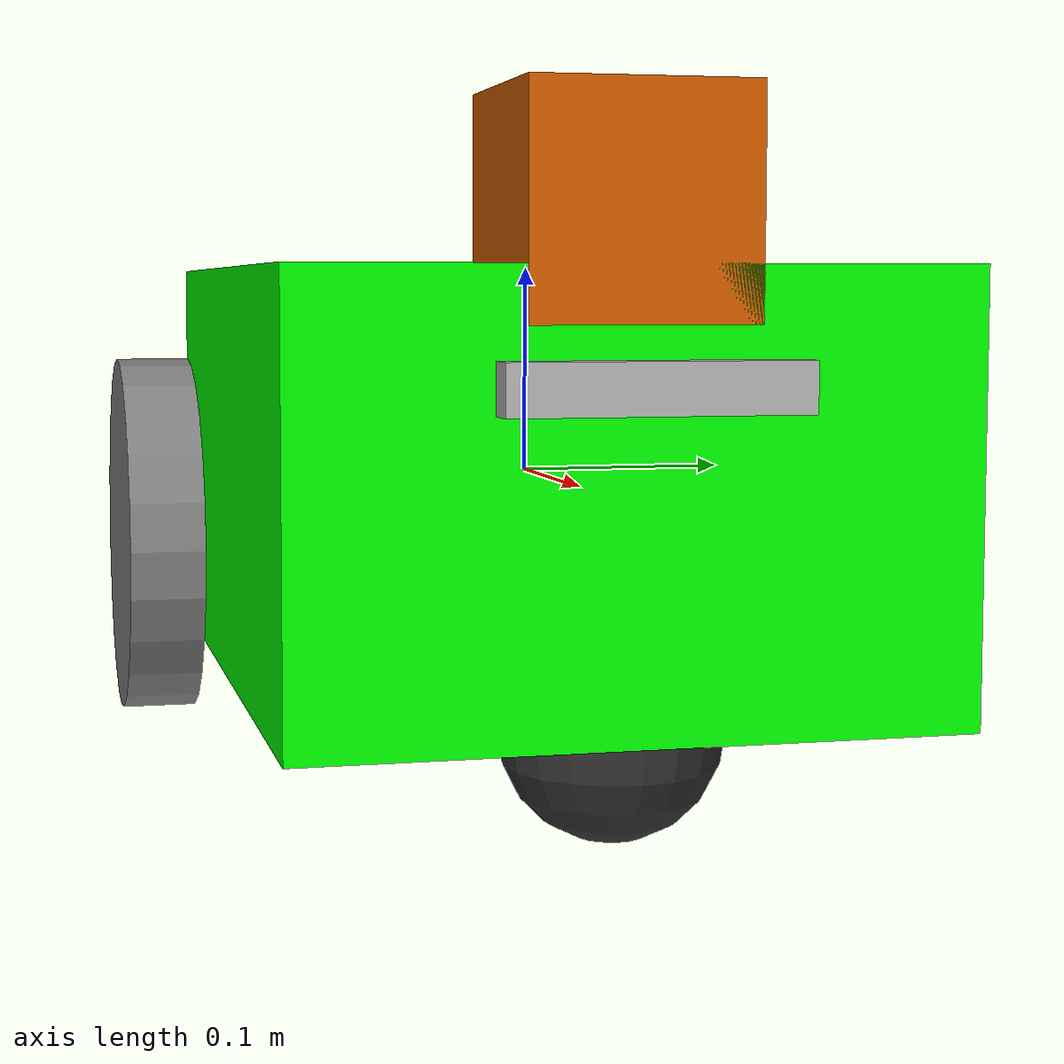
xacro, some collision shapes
<?xml version="1.0"?>
<robot name="robot_loc_nav" xmlns:xacro="http://ros.org/wiki/xacro">
    <!-- Constants for the robot-->
    <xacro:property name="width" value="0.4"/>
    <xacro:property name="depth" value="0.3"/>
    <xacro:property name="height" value="0.2"/>
    <xacro:property name="radius" value="0.1"/>
    <xacro:property name="length" value="0.04"/>
    <xacro:property name="radius2" value="0.05"/>
    <xacro:property name="mass" value="1"/>
    <xacro:property name="rotation" value="3.14"/>

    <!-- Import colors for Robot-->
    <xacro:include filename="$(find robot_loc_nav)/urdf/materials.xacro"/>

    <!--Import Gazebo plugins. Colors and Differetnial Drive-->
    <xacro:include filename="$(find robot_loc_nav)/urdf/my_robot.gazebo"/>

    <!-- Import Gazebo plugin for LASER-->
    <xacro:include filename="$(find robot_loc_nav)/urdf/laser.gazebo"/>

    <!-- Import Gazebo plugin for IMU-->
    <xacro:include filename="$(find robot_loc_nav)/urdf/imu.gazebo"/>

    <!-- Import Gazebo plugins for depth camera-->

    <!-- Default inertia for boxes-->
    <xacro:macro name="default_inertia_boxes" params="mass width depth height">
        <inertial>
            <origin xyz="0 0 ${height/2}" rpy="0 0 0"/>
            <mass value="${mass}"/>
            <inertia ixx="${(mass/12)*(height*height+depth*depth)}" ixy="0" ixz="0"
                     iyy="${(mass/12)*(width*width+depth*depth)}" iyz="0"
                     izz="${(mass/12)*(height*height+width*width)}"/>
            </inertial>
    </xacro:macro>

    <!-- Default inertia for cylinders-->
    <xacro:macro name="default_inertia_cylinder" params="mass radius length">
        <inertial>
            <origin xyz="0 0 0" rpy="0 0 0"/>
            <mass value="${mass/2}"/>
            <inertia ixx="${(mass/12)*(3*radius*radius+length*length)}" ixy="0" ixz="0"
                     iyy="${(mass/12)*(3*radius*radius+length*length)}" iyz="0"
                     izz="${(mass/2)*radius*radius}"/>
        </inertial>
    </xacro:macro>

    <!-- Base Link-->
    <link name="base_link">
        <visual>
            <origin xyz="0 0 0" rpy="0 0 0"/>
            <geometry>
                <box size="${width} ${depth} ${height}"/>
            </geometry>
            <material name="green"/>
        </visual>
        <collision>
            <origin xyz="0 0 0" rpy="0 0 0"/>
            <geometry>
                <box size="${width} ${depth} ${height}"/>
            </geometry>
        </collision>
        <xacro:default_inertia_boxes mass="${mass/2}" height="${height}" width="${width}" depth="${depth}"/>
    </link>

    <!-- Robot Footprint -->
    <link name="base_footprint">
        <xacro:default_inertia_boxes mass="0" width="0" depth="0" height="0"/>
    </link>

    <joint name="base_joint" type="fixed">
        <parent link="base_link"/>
        <child link="base_footprint"/>
        <origin xyz="0.0 0.0 ${-(radius+0.05)}" rpy="0 0 0"/>
    </joint>

    <!-- Caster Link-->
    <link name="caster">
        <visual>
            <origin xyz="0 0 0" rpy="0 0 0"/>
            <geometry>
                <sphere radius="${radius2}"/>
            </geometry>
            <material name="gray"/>
        </visual>
        <collision>
            <origin xyz="0 0 0" rpy="0 0 0"/>
            <geometry>
                <sphere radius="${radius2}"/>
            </geometry>
        </collision>
        <inertial>
            <origin xyz="0 0 0" rpy="0 0 0"/>
            <mass value="${mass/10}"/>
            <inertia ixx="${(2/5)*(mass/10)*radius2*radius2}" ixy="0" ixz="0"
                     iyy="${(2/5)*(mass/10)*radius2*radius2}" iyz="0"
                     izz="${(2/5)*(mass/10)*radius2*radius2}"/>
        </inertial>
    </link>

    <!-- Joint for Caster. The parent will be the base_link-->
    <joint name="caster_joint" type="fixed">
        <parent link="base_link"/>
        <child link="caster"/>
        <origin xyz="${width/2-radius2} 0 -0.1"/>
    </joint>

    <!-- Create a xacro macro which defines all the necessaries for the wheels -->
    <xacro:macro name="wheel" params="prefix y_reflect">
        <link name="${prefix}_wheel">
            <visual>
                <origin xyz="0 0 0" rpy="${rotation/2} 0 0"/>
                <geometry>
                    <cylinder radius="${radius}" length="${length}"/>
                </geometry>
                <material name="Gray">
                <color rgba="0.5 0.5 0.5 1.0"/>
            </material>
            </visual>

            <collision>
                <origin xyz="0 0 0" rpy="${rotation/2} 0 0"/>
                <geometry>
                    <cylinder radius="${radius}" length="${length}"/>
                </geometry>
            </collision>

            <xacro:default_inertia_cylinder mass="0.5" radius="${radius}" length="${length}"/>
        </link>
        <!-- Joint for wheels-->
        <joint name="${prefix}_joint" type="continuous">
            <parent link="base_link"/>
            <child link="${prefix}_wheel"/>
            <origin xyz="${-width/2} ${y_reflect*(length/2+depth/2)} ${-radius/2}" rpy="0 0 0"/>
            <axis xyz="0 1 0"/>
        </joint>
    </xacro:macro>

    <!-- We define the two wheels-->
    <xacro:wheel prefix="left" y_reflect="1" />
    <xacro:wheel prefix="right" y_reflect="-1" />

    <!--LINK LASER-->
    <link name="hokuyo">
        <visual>
            <origin xyz="0 0 0" rpy="0 0 0"/>
            <geometry>
                <mesh filename="file://$(find robot_loc_nav)/meshes/hokuyo.dae"/>
            </geometry>
        </visual>
        <collision>
            <origin xyz="0 0 0" rpy="0 0 0"/>
            <geometry>
                <box size="0.1 0.1 0.1"/>
            </geometry>
        </collision>
        <inertial>
            <mass value="1e-5" />
            <origin xyz="0 0 0" rpy="0 0 0"/>
            <inertia ixx="0.0005" ixy="0" ixz="0" iyy="0.0005" iyz="0" izz="0.0005" />
        </inertial>
    </link>

    <!--JOINT FOR LASER -->
    <joint name="joint_laser" type="fixed">
        <parent link="base_link"/>
        <child link="hokuyo"/>
        <axis xyz="0 1 0"/>
        <origin xyz="${width/2-0.05} 0 ${height/2+0.025}" rpy="0 0 0"/>
    </joint>

    <!-- imu link-->
    <link name="imu_link">
        <visual>
            <geometry>
                <box size="0.1 0.1 0.1"/>
            </geometry>
        </visual>
        <collision>
            <geometry>
                <box size="0.1 0.1 0.1"/>
            </geometry>
        </collision>
        <xacro:default_inertia_boxes mass="0.1" width="0.1" depth="0.1" height="0.1"/>
    </link>

    <joint name="imu_joint" type="fixed">
        <parent link="base_link"/>
        <child link="imu_link"/>
        <origin xyz="0 0 0.01"/>
    </joint>

    <!-- Camera Link-->
    <link name="camera_link">
        <visual>
            <origin xyz="0 0 0" rpy="0 0 0"/>
            <geometry>
                <box size="0.015 0.130 0.022"/>
            </geometry>
        </visual>

        <collision>
            <origin xyz="0 0 0" rpy="0 0 0"/>
            <geometry>
                <box size="0.015 0.130 0.022"/>
            </geometry>
        </collision>

        <inertial>
            <origin xyz="0 0 0" rpy="0 0 0"/>
            <mass value="0.035"/>
            <inertia ixx="0.001"  ixy="0"  ixz="0" iyy="0.001" iyz="0" izz="0.001" />
        </inertial>
    </link>

    <joint name="camera_joint" type="fixed">
        <parent link="base_link"/>
        <child link="camera_link"/>
        <origin xyz="0.215 0 0.05" rpy="0 0 0"/>
    </joint>

    <link name="camera_depth_frame"/>

    <joint name="camera_depth_joint" type="fixed">
        <origin xyz="0 0 0" rpy="${-pi/2} 0 ${-pi/2}"/>
        <parent link="camera_link"/>
        <child link="camera_depth_frame"/>
    </joint>

</robot>

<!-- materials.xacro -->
<robot>

  <material name="black">
    <color rgba="0.0 0.0 0.0 1.0"/>
  </material>

  <material name="blue">
    <color rgba="0.0 0.0 0.8 1.0"/>
  </material>

  <material name="green">
    <color rgba="0.0 1.0 0.0 1.0"/>
  </material>

  <material name="gray">
    <color rgba="0.2 0.2 0.2 1.0"/>
  </material>

  <material name="orange">
    <color rgba="${255/255} ${108/255} ${10/255} 1.0"/>
  </material>

  <material name="brown">
    <color rgba="${222/255} ${207/255} ${195/255} 1.0"/>
  </material>

  <material name="red">
    <color rgba="0.8 0.0 0.0 1.0"/>
  </material>

  <material name="white">
    <color rgba="1.0 1.0 1.0 1.0"/>
  </material>

</robot>
